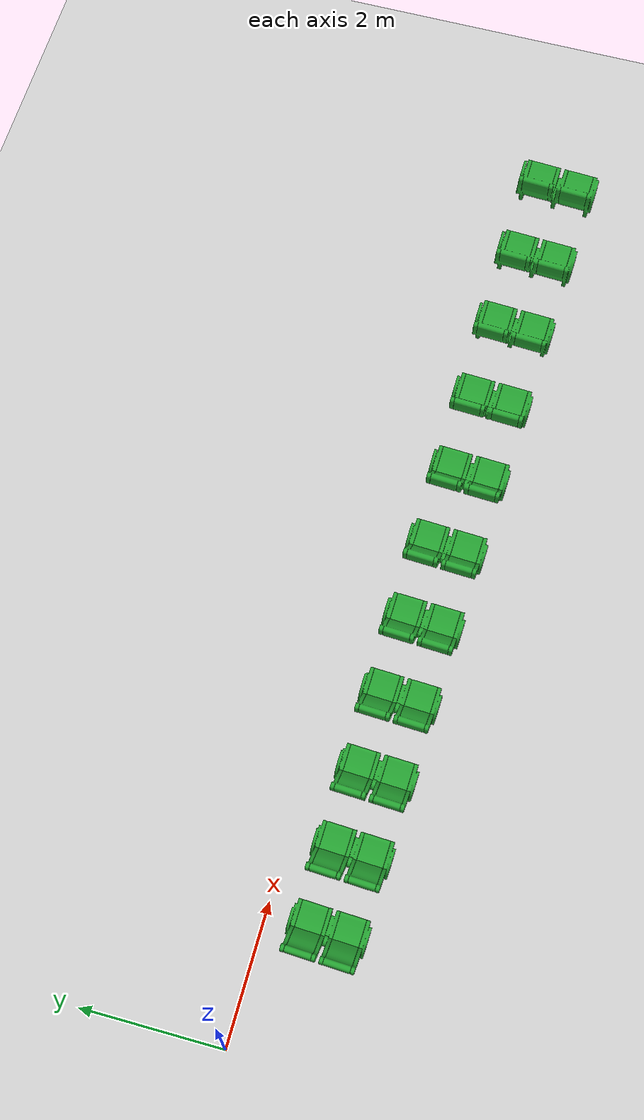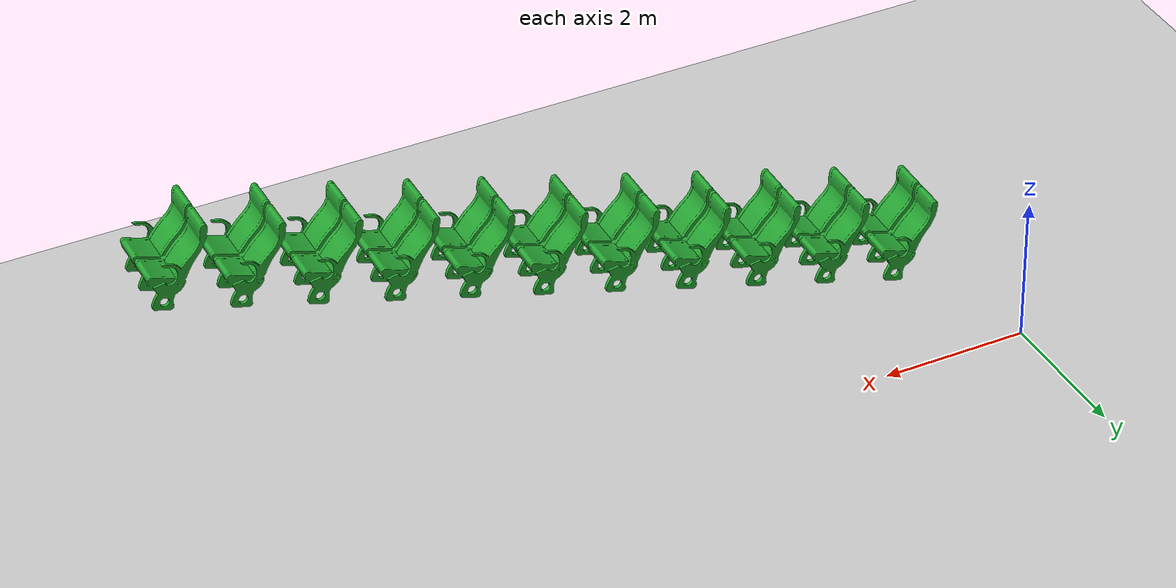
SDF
<sdf version="1.7">
 <world name="default">
  <model name="ground_plane">
   <static>1</static>
   <link name="link">
    <collision name="collision">
     <geometry><plane><normal>0 0 1</normal><size>100 100</size></plane></geometry>
     <surface><friction><ode><mu>100</mu><mu2>50</mu2></ode></friction></surface>
    </collision>
    <visual name="visual">
     <cast_shadows>0</cast_shadows>
     <geometry><plane><normal>0 0 1</normal><size>100 100</size></plane></geometry>
     <material>
      <script><uri>file://media/materials/scripts/gazebo.material</uri><name>Gazebo/Grey</name></script>
     </material>
    </visual>
   </link>
  </model>
  <model name="seat_row">
   <model name="seat1">
    <link name="link_1">
     <inertial>
      <mass>1</mass>
      <inertia><ixx>0</ixx><ixy>0</ixy><ixz>0</ixz><iyy>0</iyy><iyz>0</iyz><izz>0</izz></inertia>
     </inertial>
     <gravity>0</gravity>
     <visual name="visual">
      <geometry><mesh><uri>model://seat1/meshes/seat1.stl</uri><scale>0.001 0.001 0.001</scale></mesh></geometry>
      <material>
       <lighting>1</lighting>
       <script><uri>file://media/materials/scripts/gazebo.material</uri><name>Gazebo/Green</name></script>
       <shader type="vertex"><normal_map>__default__</normal_map></shader>
       <ambient>0.3 0.3 0.3 1</ambient>
       <diffuse>0.7 0.7 0.7 1</diffuse>
       <specular>0.01 0.01 0.01 1</specular>
       <emissive>0 0 0 1</emissive>
      </material>
     </visual>
     <collision name="collision">
      <geometry><mesh><uri>model://seat1/meshes/seat1.stl</uri><scale>0.001 0.001 0.001</scale></mesh></geometry>
      <surface>
       <friction>
        <ode><mu>100000</mu><mu2>100000</mu2><fdir1>0 0 0</fdir1><slip1>0</slip1><slip2>0</slip2></ode>
        <torsional>
         <coefficient>1</coefficient>
         <patch_radius>0</patch_radius>
         <surface_radius>0</surface_radius>
         <use_patch_radius>1</use_patch_radius>
         <ode><slip>0</slip></ode>
        </torsional>
       </friction>
       <bounce><restitution_coefficient>0</restitution_coefficient><threshold>1e+06</threshold></bounce>
       <contact>
        <collide_without_contact>0</collide_without_contact>
        <collide_without_contact_bitmask>1</collide_without_contact_bitmask>
        <collide_bitmask>1</collide_bitmask>
        <ode>
         <soft_cfm>0</soft_cfm>
         <soft_erp>0.2</soft_erp>
         <kp>1e+13</kp>
         <kd>1</kd>
         <max_vel>0.01</max_vel>
         <min_depth>0</min_depth>
        </ode>
        <bullet>
         <split_impulse>1</split_impulse>
         <split_impulse_penetration_threshold>-0.01</split_impulse_penetration_threshold>
         <soft_cfm>0</soft_cfm>
         <soft_erp>0.2</soft_erp>
         <kp>1e+13</kp>
         <kd>1</kd>
        </bullet>
       </contact>
      </surface>
     </collision>
    </link>
    <static>0</static>
    <pose>-5.00208 0.001743 0 0 -0 0</pose>
   </model>
   <model name="seat1_0">
    <link name="link_1">
     <inertial>
      <mass>1</mass>
      <inertia><ixx>0</ixx><ixy>0</ixy><ixz>0</ixz><iyy>0</iyy><iyz>0</iyz><izz>0</izz></inertia>
     </inertial>
     <gravity>0</gravity>
     <visual name="visual">
      <geometry><mesh><uri>model://seat1/meshes/seat1.stl</uri><scale>0.001 0.001 0.001</scale></mesh></geometry>
      <material>
       <lighting>1</lighting>
       <script><uri>file://media/materials/scripts/gazebo.material</uri><name>Gazebo/Green</name></script>
       <shader type="vertex"><normal_map>__default__</normal_map></shader>
       <ambient>0.3 0.3 0.3 1</ambient>
       <diffuse>0.7 0.7 0.7 1</diffuse>
       <specular>0.01 0.01 0.01 1</specular>
       <emissive>0 0 0 1</emissive>
      </material>
     </visual>
     <collision name="collision">
      <geometry><mesh><uri>model://seat1/meshes/seat1.stl</uri><scale>0.001 0.001 0.001</scale></mesh></geometry>
      <surface>
       <friction>
        <ode><mu>100000</mu><mu2>100000</mu2><fdir1>0 0 0</fdir1><slip1>0</slip1><slip2>0</slip2></ode>
        <torsional>
         <coefficient>1</coefficient>
         <patch_radius>0</patch_radius>
         <surface_radius>0</surface_radius>
         <use_patch_radius>1</use_patch_radius>
         <ode><slip>0</slip></ode>
        </torsional>
       </friction>
       <bounce><restitution_coefficient>0</restitution_coefficient><threshold>1e+06</threshold></bounce>
       <contact>
        <collide_without_contact>0</collide_without_contact>
        <collide_without_contact_bitmask>1</collide_without_contact_bitmask>
        <collide_bitmask>1</collide_bitmask>
        <ode>
         <soft_cfm>0</soft_cfm>
         <soft_erp>0.2</soft_erp>
         <kp>1e+13</kp>
         <kd>1</kd>
         <max_vel>0.01</max_vel>
         <min_depth>0</min_depth>
        </ode>
        <bullet>
         <split_impulse>1</split_impulse>
         <split_impulse_penetration_threshold>-0.01</split_impulse_penetration_threshold>
         <soft_cfm>0</soft_cfm>
         <soft_erp>0.2</soft_erp>
         <kp>1e+13</kp>
         <kd>1</kd>
        </bullet>
       </contact>
      </surface>
     </collision>
    </link>
    <static>0</static>
    <pose>-3.99686 0.001612 0 0 -0 0</pose>
   </model>
   <model name="seat1_1">
    <link name="link_1">
     <inertial>
      <mass>1</mass>
      <inertia><ixx>0</ixx><ixy>0</ixy><ixz>0</ixz><iyy>0</iyy><iyz>0</iyz><izz>0</izz></inertia>
     </inertial>
     <gravity>0</gravity>
     <visual name="visual">
      <geometry><mesh><uri>model://seat1/meshes/seat1.stl</uri><scale>0.001 0.001 0.001</scale></mesh></geometry>
      <material>
       <lighting>1</lighting>
       <script><uri>file://media/materials/scripts/gazebo.material</uri><name>Gazebo/Green</name></script>
       <shader type="vertex"><normal_map>__default__</normal_map></shader>
       <ambient>0.3 0.3 0.3 1</ambient>
       <diffuse>0.7 0.7 0.7 1</diffuse>
       <specular>0.01 0.01 0.01 1</specular>
       <emissive>0 0 0 1</emissive>
      </material>
     </visual>
     <collision name="collision">
      <geometry><mesh><uri>model://seat1/meshes/seat1.stl</uri><scale>0.001 0.001 0.001</scale></mesh></geometry>
      <surface>
       <friction>
        <ode><mu>100000</mu><mu2>100000</mu2><fdir1>0 0 0</fdir1><slip1>0</slip1><slip2>0</slip2></ode>
        <torsional>
         <coefficient>1</coefficient>
         <patch_radius>0</patch_radius>
         <surface_radius>0</surface_radius>
         <use_patch_radius>1</use_patch_radius>
         <ode><slip>0</slip></ode>
        </torsional>
       </friction>
       <bounce><restitution_coefficient>0</restitution_coefficient><threshold>1e+06</threshold></bounce>
       <contact>
        <collide_without_contact>0</collide_without_contact>
        <collide_without_contact_bitmask>1</collide_without_contact_bitmask>
        <collide_bitmask>1</collide_bitmask>
        <ode>
         <soft_cfm>0</soft_cfm>
         <soft_erp>0.2</soft_erp>
         <kp>1e+13</kp>
         <kd>1</kd>
         <max_vel>0.01</max_vel>
         <min_depth>0</min_depth>
        </ode>
        <bullet>
         <split_impulse>1</split_impulse>
         <split_impulse_penetration_threshold>-0.01</split_impulse_penetration_threshold>
         <soft_cfm>0</soft_cfm>
         <soft_erp>0.2</soft_erp>
         <kp>1e+13</kp>
         <kd>1</kd>
        </bullet>
       </contact>
      </surface>
     </collision>
    </link>
    <static>0</static>
    <pose>-2.99688 8.4e-05 0 0 -0 0</pose>
   </model>
   <model name="seat1_2">
    <link name="link_1">
     <inertial>
      <mass>1</mass>
      <inertia><ixx>0</ixx><ixy>0</ixy><ixz>0</ixz><iyy>0</iyy><iyz>0</iyz><izz>0</izz></inertia>
     </inertial>
     <gravity>0</gravity>
     <visual name="visual">
      <geometry><mesh><uri>model://seat1/meshes/seat1.stl</uri><scale>0.001 0.001 0.001</scale></mesh></geometry>
      <material>
       <lighting>1</lighting>
       <script><uri>file://media/materials/scripts/gazebo.material</uri><name>Gazebo/Green</name></script>
       <shader type="vertex"><normal_map>__default__</normal_map></shader>
       <ambient>0.3 0.3 0.3 1</ambient>
       <diffuse>0.7 0.7 0.7 1</diffuse>
       <specular>0.01 0.01 0.01 1</specular>
       <emissive>0 0 0 1</emissive>
      </material>
     </visual>
     <collision name="collision">
      <geometry><mesh><uri>model://seat1/meshes/seat1.stl</uri><scale>0.001 0.001 0.001</scale></mesh></geometry>
      <surface>
       <friction>
        <ode><mu>100000</mu><mu2>100000</mu2><fdir1>0 0 0</fdir1><slip1>0</slip1><slip2>0</slip2></ode>
        <torsional>
         <coefficient>1</coefficient>
         <patch_radius>0</patch_radius>
         <surface_radius>0</surface_radius>
         <use_patch_radius>1</use_patch_radius>
         <ode><slip>0</slip></ode>
        </torsional>
       </friction>
       <bounce><restitution_coefficient>0</restitution_coefficient><threshold>1e+06</threshold></bounce>
       <contact>
        <collide_without_contact>0</collide_without_contact>
        <collide_without_contact_bitmask>1</collide_without_contact_bitmask>
        <collide_bitmask>1</collide_bitmask>
        <ode>
         <soft_cfm>0</soft_cfm>
         <soft_erp>0.2</soft_erp>
         <kp>1e+13</kp>
         <kd>1</kd>
         <max_vel>0.01</max_vel>
         <min_depth>0</min_depth>
        </ode>
        <bullet>
         <split_impulse>1</split_impulse>
         <split_impulse_penetration_threshold>-0.01</split_impulse_penetration_threshold>
         <soft_cfm>0</soft_cfm>
         <soft_erp>0.2</soft_erp>
         <kp>1e+13</kp>
         <kd>1</kd>
        </bullet>
       </contact>
      </surface>
     </collision>
    </link>
    <static>0</static>
    <pose>-1.99682 0.00099 0 0 -0 0</pose>
   </model>
   <model name="seat1_3">
    <link name="link_1">
     <inertial>
      <mass>1</mass>
      <inertia><ixx>0</ixx><ixy>0</ixy><ixz>0</ixz><iyy>0</iyy><iyz>0</iyz><izz>0</izz></inertia>
     </inertial>
     <gravity>0</gravity>
     <visual name="visual">
      <geometry><mesh><uri>model://seat1/meshes/seat1.stl</uri><scale>0.001 0.001 0.001</scale></mesh></geometry>
      <material>
       <lighting>1</lighting>
       <script><uri>file://media/materials/scripts/gazebo.material</uri><name>Gazebo/Green</name></script>
       <shader type="vertex"><normal_map>__default__</normal_map></shader>
       <ambient>0.3 0.3 0.3 1</ambient>
       <diffuse>0.7 0.7 0.7 1</diffuse>
       <specular>0.01 0.01 0.01 1</specular>
       <emissive>0 0 0 1</emissive>
      </material>
     </visual>
     <collision name="collision">
      <geometry><mesh><uri>model://seat1/meshes/seat1.stl</uri><scale>0.001 0.001 0.001</scale></mesh></geometry>
      <surface>
       <friction>
        <ode><mu>100000</mu><mu2>100000</mu2><fdir1>0 0 0</fdir1><slip1>0</slip1><slip2>0</slip2></ode>
        <torsional>
         <coefficient>1</coefficient>
         <patch_radius>0</patch_radius>
         <surface_radius>0</surface_radius>
         <use_patch_radius>1</use_patch_radius>
         <ode><slip>0</slip></ode>
        </torsional>
       </friction>
       <bounce><restitution_coefficient>0</restitution_coefficient><threshold>1e+06</threshold></bounce>
       <contact>
        <collide_without_contact>0</collide_without_contact>
        <collide_without_contact_bitmask>1</collide_without_contact_bitmask>
        <collide_bitmask>1</collide_bitmask>
        <ode>
         <soft_cfm>0</soft_cfm>
         <soft_erp>0.2</soft_erp>
         <kp>1e+13</kp>
         <kd>1</kd>
         <max_vel>0.01</max_vel>
         <min_depth>0</min_depth>
        </ode>
        <bullet>
         <split_impulse>1</split_impulse>
         <split_impulse_penetration_threshold>-0.01</split_impulse_penetration_threshold>
         <soft_cfm>0</soft_cfm>
         <soft_erp>0.2</soft_erp>
         <kp>1e+13</kp>
         <kd>1</kd>
        </bullet>
       </contact>
      </surface>
     </collision>
    </link>
    <static>0</static>
    <pose>-0.998305 0.001072 0 0 -0 0</pose>
   </model>
   <model name="seat1_4">
    <link name="link_1">
     <inertial>
      <mass>1</mass>
      <inertia><ixx>0</ixx><ixy>0</ixy><ixz>0</ixz><iyy>0</iyy><iyz>0</iyz><izz>0</izz></inertia>
     </inertial>
     <gravity>0</gravity>
     <visual name="visual">
      <geometry><mesh><uri>model://seat1/meshes/seat1.stl</uri><scale>0.001 0.001 0.001</scale></mesh></geometry>
      <material>
       <lighting>1</lighting>
       <script><uri>file://media/materials/scripts/gazebo.material</uri><name>Gazebo/Green</name></script>
       <shader type="vertex"><normal_map>__default__</normal_map></shader>
       <ambient>0.3 0.3 0.3 1</ambient>
       <diffuse>0.7 0.7 0.7 1</diffuse>
       <specular>0.01 0.01 0.01 1</specular>
       <emissive>0 0 0 1</emissive>
      </material>
     </visual>
     <collision name="collision">
      <geometry><mesh><uri>model://seat1/meshes/seat1.stl</uri><scale>0.001 0.001 0.001</scale></mesh></geometry>
      <surface>
       <friction>
        <ode><mu>100000</mu><mu2>100000</mu2><fdir1>0 0 0</fdir1><slip1>0</slip1><slip2>0</slip2></ode>
        <torsional>
         <coefficient>1</coefficient>
         <patch_radius>0</patch_radius>
         <surface_radius>0</surface_radius>
         <use_patch_radius>1</use_patch_radius>
         <ode><slip>0</slip></ode>
        </torsional>
       </friction>
       <bounce><restitution_coefficient>0</restitution_coefficient><threshold>1e+06</threshold></bounce>
       <contact>
        <collide_without_contact>0</collide_without_contact>
        <collide_without_contact_bitmask>1</collide_without_contact_bitmask>
        <collide_bitmask>1</collide_bitmask>
        <ode>
         <soft_cfm>0</soft_cfm>
         <soft_erp>0.2</soft_erp>
         <kp>1e+13</kp>
         <kd>1</kd>
         <max_vel>0.01</max_vel>
         <min_depth>0</min_depth>
        </ode>
        <bullet>
         <split_impulse>1</split_impulse>
         <split_impulse_penetration_threshold>-0.01</split_impulse_penetration_threshold>
         <soft_cfm>0</soft_cfm>
         <soft_erp>0.2</soft_erp>
         <kp>1e+13</kp>
         <kd>1</kd>
        </bullet>
       </contact>
      </surface>
     </collision>
    </link>
    <static>0</static>
    <pose>-0.004801 0.000182 0 0 -0 0</pose>
   </model>
   <model name="seat1_5">
    <link name="link_1">
     <inertial>
      <mass>1</mass>
      <inertia><ixx>0</ixx><ixy>0</ixy><ixz>0</ixz><iyy>0</iyy><iyz>0</iyz><izz>0</izz></inertia>
     </inertial>
     <gravity>0</gravity>
     <visual name="visual">
      <geometry><mesh><uri>model://seat1/meshes/seat1.stl</uri><scale>0.001 0.001 0.001</scale></mesh></geometry>
      <material>
       <lighting>1</lighting>
       <script><uri>file://media/materials/scripts/gazebo.material</uri><name>Gazebo/Green</name></script>
       <shader type="vertex"><normal_map>__default__</normal_map></shader>
       <ambient>0.3 0.3 0.3 1</ambient>
       <diffuse>0.7 0.7 0.7 1</diffuse>
       <specular>0.01 0.01 0.01 1</specular>
       <emissive>0 0 0 1</emissive>
      </material>
     </visual>
     <collision name="collision">
      <geometry><mesh><uri>model://seat1/meshes/seat1.stl</uri><scale>0.001 0.001 0.001</scale></mesh></geometry>
      <surface>
       <friction>
        <ode><mu>100000</mu><mu2>100000</mu2><fdir1>0 0 0</fdir1><slip1>0</slip1><slip2>0</slip2></ode>
        <torsional>
         <coefficient>1</coefficient>
         <patch_radius>0</patch_radius>
         <surface_radius>0</surface_radius>
         <use_patch_radius>1</use_patch_radius>
         <ode><slip>0</slip></ode>
        </torsional>
       </friction>
       <bounce><restitution_coefficient>0</restitution_coefficient><threshold>1e+06</threshold></bounce>
       <contact>
        <collide_without_contact>0</collide_without_contact>
        <collide_without_contact_bitmask>1</collide_without_contact_bitmask>
        <collide_bitmask>1</collide_bitmask>
        <ode>
         <soft_cfm>0</soft_cfm>
         <soft_erp>0.2</soft_erp>
         <kp>1e+13</kp>
         <kd>1</kd>
         <max_vel>0.01</max_vel>
         <min_depth>0</min_depth>
        </ode>
        <bullet>
         <split_impulse>1</split_impulse>
         <split_impulse_penetration_threshold>-0.01</split_impulse_penetration_threshold>
         <soft_cfm>0</soft_cfm>
         <soft_erp>0.2</soft_erp>
         <kp>1e+13</kp>
         <kd>1</kd>
        </bullet>
       </contact>
      </surface>
     </collision>
    </link>
    <static>0</static>
    <pose>0.991072 -0.000694 0 0 -0 0</pose>
   </model>
   <model name="seat1_6">
    <link name="link_1">
     <inertial>
      <mass>1</mass>
      <inertia><ixx>0</ixx><ixy>0</ixy><ixz>0</ixz><iyy>0</iyy><iyz>0</iyz><izz>0</izz></inertia>
     </inertial>
     <gravity>0</gravity>
     <visual name="visual">
      <geometry><mesh><uri>model://seat1/meshes/seat1.stl</uri><scale>0.001 0.001 0.001</scale></mesh></geometry>
      <material>
       <lighting>1</lighting>
       <script><uri>file://media/materials/scripts/gazebo.material</uri><name>Gazebo/Green</name></script>
       <shader type="vertex"><normal_map>__default__</normal_map></shader>
       <ambient>0.3 0.3 0.3 1</ambient>
       <diffuse>0.7 0.7 0.7 1</diffuse>
       <specular>0.01 0.01 0.01 1</specular>
       <emissive>0 0 0 1</emissive>
      </material>
     </visual>
     <collision name="collision">
      <geometry><mesh><uri>model://seat1/meshes/seat1.stl</uri><scale>0.001 0.001 0.001</scale></mesh></geometry>
      <surface>
       <friction>
        <ode><mu>100000</mu><mu2>100000</mu2><fdir1>0 0 0</fdir1><slip1>0</slip1><slip2>0</slip2></ode>
        <torsional>
         <coefficient>1</coefficient>
         <patch_radius>0</patch_radius>
         <surface_radius>0</surface_radius>
         <use_patch_radius>1</use_patch_radius>
         <ode><slip>0</slip></ode>
        </torsional>
       </friction>
       <bounce><restitution_coefficient>0</restitution_coefficient><threshold>1e+06</threshold></bounce>
       <contact>
        <collide_without_contact>0</collide_without_contact>
        <collide_without_contact_bitmask>1</collide_without_contact_bitmask>
        <collide_bitmask>1</collide_bitmask>
        <ode>
         <soft_cfm>0</soft_cfm>
         <soft_erp>0.2</soft_erp>
         <kp>1e+13</kp>
         <kd>1</kd>
         <max_vel>0.01</max_vel>
         <min_depth>0</min_depth>
        </ode>
        <bullet>
         <split_impulse>1</split_impulse>
         <split_impulse_penetration_threshold>-0.01</split_impulse_penetration_threshold>
         <soft_cfm>0</soft_cfm>
         <soft_erp>0.2</soft_erp>
         <kp>1e+13</kp>
         <kd>1</kd>
        </bullet>
       </contact>
      </surface>
     </collision>
    </link>
    <static>0</static>
    <pose>1.995 -0.000829 0 0 -0 0</pose>
   </model>
   <model name="seat1_7">
    <link name="link_1">
     <inertial>
      <mass>1</mass>
      <inertia><ixx>0</ixx><ixy>0</ixy><ixz>0</ixz><iyy>0</iyy><iyz>0</iyz><izz>0</izz></inertia>
     </inertial>
     <gravity>0</gravity>
     <visual name="visual">
      <geometry><mesh><uri>model://seat1/meshes/seat1.stl</uri><scale>0.001 0.001 0.001</scale></mesh></geometry>
      <material>
       <lighting>1</lighting>
       <script><uri>file://media/materials/scripts/gazebo.material</uri><name>Gazebo/Green</name></script>
       <shader type="vertex"><normal_map>__default__</normal_map></shader>
       <ambient>0.3 0.3 0.3 1</ambient>
       <diffuse>0.7 0.7 0.7 1</diffuse>
       <specular>0.01 0.01 0.01 1</specular>
       <emissive>0 0 0 1</emissive>
      </material>
     </visual>
     <collision name="collision">
      <geometry><mesh><uri>model://seat1/meshes/seat1.stl</uri><scale>0.001 0.001 0.001</scale></mesh></geometry>
      <surface>
       <friction>
        <ode><mu>100000</mu><mu2>100000</mu2><fdir1>0 0 0</fdir1><slip1>0</slip1><slip2>0</slip2></ode>
        <torsional>
         <coefficient>1</coefficient>
         <patch_radius>0</patch_radius>
         <surface_radius>0</surface_radius>
         <use_patch_radius>1</use_patch_radius>
         <ode><slip>0</slip></ode>
        </torsional>
       </friction>
       <bounce><restitution_coefficient>0</restitution_coefficient><threshold>1e+06</threshold></bounce>
       <contact>
        <collide_without_contact>0</collide_without_contact>
        <collide_without_contact_bitmask>1</collide_without_contact_bitmask>
        <collide_bitmask>1</collide_bitmask>
        <ode>
         <soft_cfm>0</soft_cfm>
         <soft_erp>0.2</soft_erp>
         <kp>1e+13</kp>
         <kd>1</kd>
         <max_vel>0.01</max_vel>
         <min_depth>0</min_depth>
        </ode>
        <bullet>
         <split_impulse>1</split_impulse>
         <split_impulse_penetration_threshold>-0.01</split_impulse_penetration_threshold>
         <soft_cfm>0</soft_cfm>
         <soft_erp>0.2</soft_erp>
         <kp>1e+13</kp>
         <kd>1</kd>
        </bullet>
       </contact>
      </surface>
     </collision>
    </link>
    <static>0</static>
    <pose>3.00584 -0.001387 0 0 -0 0</pose>
   </model>
   <model name="seat1_8">
    <link name="link_1">
     <inertial>
      <mass>1</mass>
      <inertia><ixx>0</ixx><ixy>0</ixy><ixz>0</ixz><iyy>0</iyy><iyz>0</iyz><izz>0</izz></inertia>
     </inertial>
     <gravity>0</gravity>
     <visual name="visual">
      <geometry><mesh><uri>model://seat1/meshes/seat1.stl</uri><scale>0.001 0.001 0.001</scale></mesh></geometry>
      <material>
       <lighting>1</lighting>
       <script><uri>file://media/materials/scripts/gazebo.material</uri><name>Gazebo/Green</name></script>
       <shader type="vertex"><normal_map>__default__</normal_map></shader>
       <ambient>0.3 0.3 0.3 1</ambient>
       <diffuse>0.7 0.7 0.7 1</diffuse>
       <specular>0.01 0.01 0.01 1</specular>
       <emissive>0 0 0 1</emissive>
      </material>
     </visual>
     <collision name="collision">
      <geometry><mesh><uri>model://seat1/meshes/seat1.stl</uri><scale>0.001 0.001 0.001</scale></mesh></geometry>
      <surface>
       <friction>
        <ode><mu>100000</mu><mu2>100000</mu2><fdir1>0 0 0</fdir1><slip1>0</slip1><slip2>0</slip2></ode>
        <torsional>
         <coefficient>1</coefficient>
         <patch_radius>0</patch_radius>
         <surface_radius>0</surface_radius>
         <use_patch_radius>1</use_patch_radius>
         <ode><slip>0</slip></ode>
        </torsional>
       </friction>
       <bounce><restitution_coefficient>0</restitution_coefficient><threshold>1e+06</threshold></bounce>
       <contact>
        <collide_without_contact>0</collide_without_contact>
        <collide_without_contact_bitmask>1</collide_without_contact_bitmask>
        <collide_bitmask>1</collide_bitmask>
        <ode>
         <soft_cfm>0</soft_cfm>
         <soft_erp>0.2</soft_erp>
         <kp>1e+13</kp>
         <kd>1</kd>
         <max_vel>0.01</max_vel>
         <min_depth>0</min_depth>
        </ode>
        <bullet>
         <split_impulse>1</split_impulse>
         <split_impulse_penetration_threshold>-0.01</split_impulse_penetration_threshold>
         <soft_cfm>0</soft_cfm>
         <soft_erp>0.2</soft_erp>
         <kp>1e+13</kp>
         <kd>1</kd>
        </bullet>
       </contact>
      </surface>
     </collision>
    </link>
    <static>0</static>
    <pose>4.00173 -0.000847 0 0 -0 0</pose>
   </model>
   <model name="seat1_9">
    <link name="link_1">
     <inertial>
      <mass>1</mass>
      <inertia><ixx>0</ixx><ixy>0</ixy><ixz>0</ixz><iyy>0</iyy><iyz>0</iyz><izz>0</izz></inertia>
     </inertial>
     <gravity>0</gravity>
     <visual name="visual">
      <geometry><mesh><uri>model://seat1/meshes/seat1.stl</uri><scale>0.001 0.001 0.001</scale></mesh></geometry>
      <material>
       <lighting>1</lighting>
       <script><uri>file://media/materials/scripts/gazebo.material</uri><name>Gazebo/Green</name></script>
       <shader type="vertex"><normal_map>__default__</normal_map></shader>
       <ambient>0.3 0.3 0.3 1</ambient>
       <diffuse>0.7 0.7 0.7 1</diffuse>
       <specular>0.01 0.01 0.01 1</specular>
       <emissive>0 0 0 1</emissive>
      </material>
     </visual>
     <collision name="collision">
      <geometry><mesh><uri>model://seat1/meshes/seat1.stl</uri><scale>0.001 0.001 0.001</scale></mesh></geometry>
      <surface>
       <friction>
        <ode><mu>100000</mu><mu2>100000</mu2><fdir1>0 0 0</fdir1><slip1>0</slip1><slip2>0</slip2></ode>
        <torsional>
         <coefficient>1</coefficient>
         <patch_radius>0</patch_radius>
         <surface_radius>0</surface_radius>
         <use_patch_radius>1</use_patch_radius>
         <ode><slip>0</slip></ode>
        </torsional>
       </friction>
       <bounce><restitution_coefficient>0</restitution_coefficient><threshold>1e+06</threshold></bounce>
       <contact>
        <collide_without_contact>0</collide_without_contact>
        <collide_without_contact_bitmask>1</collide_without_contact_bitmask>
        <collide_bitmask>1</collide_bitmask>
        <ode>
         <soft_cfm>0</soft_cfm>
         <soft_erp>0.2</soft_erp>
         <kp>1e+13</kp>
         <kd>1</kd>
         <max_vel>0.01</max_vel>
         <min_depth>0</min_depth>
        </ode>
        <bullet>
         <split_impulse>1</split_impulse>
         <split_impulse_penetration_threshold>-0.01</split_impulse_penetration_threshold>
         <soft_cfm>0</soft_cfm>
         <soft_erp>0.2</soft_erp>
         <kp>1e+13</kp>
         <kd>1</kd>
        </bullet>
       </contact>
      </surface>
     </collision>
    </link>
    <static>0</static>
    <pose>5.00211 -0.001924 0 0 -0 0</pose>
   </model>
   <static>0</static>
   <pose>6.10955 -1.62532 2.25205 0.017102 -0.25517 -0.042686</pose>
  </model>
 </world>
</sdf>
